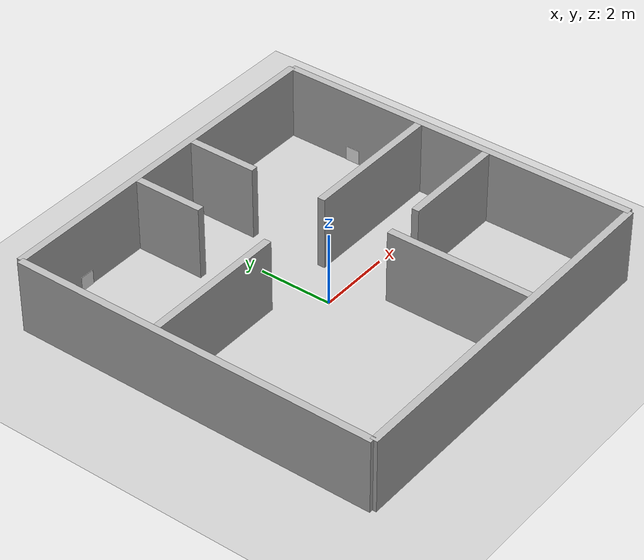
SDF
<?xml version="1.0" ?>
<sdf version="1.9">
  <world name="kidnapped_robot_world">
    <!-- Essential System Plugins for Gazebo Harmonic -->
    <plugin filename="gz-sim-physics-system" name="gz::sim::systems::Physics"/>
    <plugin filename="gz-sim-user-commands-system" name="gz::sim::systems::UserCommands"/>
    <plugin filename="gz-sim-scene-broadcaster-system" name="gz::sim::systems::SceneBroadcaster"/>
    <plugin filename="gz-sim-sensors-system" name="gz::sim::systems::Sensors">
      <render_type>ogre2</render_type>
    </plugin>
    <plugin filename="gz-sim-contact-system" name="gz::sim::systems::Contact"/>

    <physics name="1ms" type="ignored">
      <max_step_size>0.001</max_step_size>
      <real_time_factor>1.0</real_time_factor>
    </physics>

    <light type="directional" name="sun">
      <cast_shadows>true</cast_shadows>
      <pose>0 0 10 0 0 0</pose>
      <diffuse>0.8 0.8 0.8 1</diffuse>
      <specular>0.2 0.2 0.2 1</specular>
      <direction>-0.5 0.1 -0.9</direction>
    </light>

    <model name="ground_plane">
      <static>true</static>
      <link name="link">
        <collision name="collision"><geometry><plane><normal>0 0 1</normal></plane></geometry></collision>
        <visual name="visual">
          <geometry><plane><normal>0 0 1</normal><size>20 20</size></plane></geometry>
          <material><ambient>0.8 0.8 0.8 1</ambient><diffuse>0.8 0.8 0.8 1</diffuse></material>
        </visual>
      </link>
    </model>

    <!-- Outer Walls (10x10m Arena) -->
    <model name="outer_walls"><static>true</static>
      <link name="wall_n"><pose>0 5 1 0 0 0</pose><collision name="c"><geometry><box><size>10 0.2 2</size></box></geometry></collision><visual name="v"><geometry><box><size>10 0.2 2</size></box></geometry></visual></link>
      <link name="wall_s"><pose>0 -5 1 0 0 0</pose><collision name="c"><geometry><box><size>10 0.2 2</size></box></geometry></collision><visual name="v"><geometry><box><size>10 0.2 2</size></box></geometry></visual></link>
      <link name="wall_e"><pose>5 0 1 0 0 0</pose><collision name="c"><geometry><box><size>0.2 10 2</size></box></geometry></collision><visual name="v"><geometry><box><size>0.2 10 2</size></box></geometry></visual></link>
      <link name="wall_w"><pose>-5 0 1 0 0 0</pose><collision name="c"><geometry><box><size>0.2 10 2</size></box></geometry></collision><visual name="v"><geometry><box><size>0.2 10 2</size></box></geometry></visual></link>
    </model>

    <!-- Inner Partition Walls forming 3 Rooms with Open Entrances -->
    <model name="room_partitions"><static>true</static>

      <!-- Room 1 (Top-Left) -->
      <!-- Horizontal Wall (Left outer wall to X=-1) -->
      <link name="r1_h"><pose>-2.95 1 1 0 0 0</pose><collision name="c"><geometry><box><size>3.9 0.2 2</size></box></geometry></collision><visual name="v"><geometry><box><size>3.9 0.2 2</size></box></geometry></visual></link>
      <!-- Vertical Wall (Top outer wall down to Y=3, leaving a 2m entrance) -->
      <link name="r1_v"><pose>-1 3.95 1 0 0 0</pose><collision name="c"><geometry><box><size>0.2 1.9 2</size></box></geometry></collision><visual name="v"><geometry><box><size>0.2 1.9 2</size></box></geometry></visual></link>

      <!-- Room 2 (Top-Right) -->
      <!-- Horizontal Wall (Right outer wall to X=1) -->
      <link name="r2_h"><pose>2.95 1 1 0 0 0</pose><collision name="c"><geometry><box><size>3.9 0.2 2</size></box></geometry></collision><visual name="v"><geometry><box><size>3.9 0.2 2</size></box></geometry></visual></link>
      <!-- Vertical Wall (Top outer wall down to Y=3, leaving a 2m entrance) -->
      <link name="r2_v"><pose>1 3.95 1 0 0 0</pose><collision name="c"><geometry><box><size>0.2 1.9 2</size></box></geometry></collision><visual name="v"><geometry><box><size>0.2 1.9 2</size></box></geometry></visual></link>

      <!-- Room 3 (Bottom-Right) -->
      <!-- Horizontal Wall (Right outer wall to X=2, leaving a 1m entrance) -->
      <link name="r3_h"><pose>3.45 -1 1 0 0 0</pose><collision name="c"><geometry><box><size>2.9 0.2 2</size></box></geometry></collision><visual name="v"><geometry><box><size>2.9 0.2 2</size></box></geometry></visual></link>
      <!-- Vertical Wall (Bottom outer wall up to Y=-1) -->
      <link name="r3_v"><pose>1 -2.95 1 0 0 0</pose><collision name="c"><geometry><box><size>0.2 3.9 2</size></box></geometry></collision><visual name="v"><geometry><box><size>0.2 3.9 2</size></box></geometry></visual></link>

    </model>

    <!-- Picture-Frame QR Targets Mounted Flat on Walls at Robot Camera Height (Z = 0.2) -->
    <!-- Room 1 North Wall -->
    <include><uri>model://qr_target_1</uri><name>qr_room1</name><pose>-3 4.89 0.2 0 0 1.5708</pose></include>
    <!-- Room 2 East Wall -->
    <include><uri>model://qr_target_2</uri><name>qr_room2</name><pose>4.89 3 0.2 0 0 0</pose></include>
    <!-- Room 3 South Wall -->
    <include><uri>model://qr_target_3</uri><name>qr_room3</name><pose>3.5 -4.89 0.2 0 0 1.5708</pose></include>
    <!-- Hall West Wall -->
    <include><uri>model://qr_target_4</uri><name>qr_hall1</name><pose>-4.89 -2 0.2 0 0 0</pose></include>
    <!-- Hall South Wall -->
    <include><uri>model://qr_target_5</uri><name>qr_hall2</name><pose>-2 -4.89 0.2 0 0 1.5708</pose></include>
  </world>
</sdf>

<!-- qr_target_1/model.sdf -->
<sdf version="1.9">
  <model name="qr_target_1">
    <static>true</static>
    <link name="link">
      <visual name="visual">
        <geometry>
          <box>
            <size>0.01 0.4 0.4</size>
          </box>
        </geometry>
        <material>
          <ambient>1.0 1.0 1.0 1.0</ambient>
          <diffuse>1.0 1.0 1.0 1.0</diffuse>
          <pbr>
            <metal>
              <albedo_map>materials/textures/qr_target_1.png</albedo_map>
              <roughness>0.8</roughness>
              <metalness>0.0</metalness>
            </metal>
          </pbr>
        </material>
      </visual>
      <collision name="collision">
        <geometry>
          <box>
            <size>0.01 0.4 0.4</size>
          </box>
        </geometry>
      </collision>
    </link>
  </model>
</sdf>

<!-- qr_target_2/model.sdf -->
<sdf version="1.9">
  <model name="qr_target_2">
    <static>true</static>
    <link name="link">
      <visual name="visual">
        <geometry>
          <box>
            <size>0.01 0.4 0.4</size>
          </box>
        </geometry>
        <material>
          <ambient>1.0 1.0 1.0 1.0</ambient>
          <diffuse>1.0 1.0 1.0 1.0</diffuse>
          <pbr>
            <metal>
              <albedo_map>materials/textures/qr_target_2.png</albedo_map>
              <roughness>0.8</roughness>
              <metalness>0.0</metalness>
            </metal>
          </pbr>
        </material>
      </visual>
      <collision name="collision">
        <geometry>
          <box>
            <size>0.01 0.4 0.4</size>
          </box>
        </geometry>
      </collision>
    </link>
  </model>
</sdf>

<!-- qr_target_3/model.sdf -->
<sdf version="1.9">
  <model name="qr_target_3">
    <static>true</static>
    <link name="link">
      <visual name="visual">
        <geometry>
          <box>
            <size>0.01 0.4 0.4</size>
          </box>
        </geometry>
        <material>
          <ambient>1.0 1.0 1.0 1.0</ambient>
          <diffuse>1.0 1.0 1.0 1.0</diffuse>
          <pbr>
            <metal>
              <albedo_map>materials/textures/qr_target_3.png</albedo_map>
              <roughness>0.8</roughness>
              <metalness>0.0</metalness>
            </metal>
          </pbr>
        </material>
      </visual>
      <collision name="collision">
        <geometry>
          <box>
            <size>0.01 0.4 0.4</size>
          </box>
        </geometry>
      </collision>
    </link>
  </model>
</sdf>

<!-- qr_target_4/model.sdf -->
<sdf version="1.9">
  <model name="qr_target_4">
    <static>true</static>
    <link name="link">
      <visual name="visual">
        <geometry>
          <box>
            <size>0.01 0.4 0.4</size>
          </box>
        </geometry>
        <material>
          <ambient>1.0 1.0 1.0 1.0</ambient>
          <diffuse>1.0 1.0 1.0 1.0</diffuse>
          <pbr>
            <metal>
              <albedo_map>materials/textures/qr_target_4.png</albedo_map>
              <roughness>0.8</roughness>
              <metalness>0.0</metalness>
            </metal>
          </pbr>
        </material>
      </visual>
      <collision name="collision">
        <geometry>
          <box>
            <size>0.01 0.4 0.4</size>
          </box>
        </geometry>
      </collision>
    </link>
  </model>
</sdf>

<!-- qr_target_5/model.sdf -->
<sdf version="1.9">
  <model name="qr_target_5">
    <static>true</static>
    <link name="link">
      <visual name="visual">
        <geometry>
          <box>
            <size>0.01 0.4 0.4</size>
          </box>
        </geometry>
        <material>
          <ambient>1.0 1.0 1.0 1.0</ambient>
          <diffuse>1.0 1.0 1.0 1.0</diffuse>
          <pbr>
            <metal>
              <albedo_map>materials/textures/qr_target_5.png</albedo_map>
              <roughness>0.8</roughness>
              <metalness>0.0</metalness>
            </metal>
          </pbr>
        </material>
      </visual>
      <collision name="collision">
        <geometry>
          <box>
            <size>0.01 0.4 0.4</size>
          </box>
        </geometry>
      </collision>
    </link>
  </model>
</sdf>
